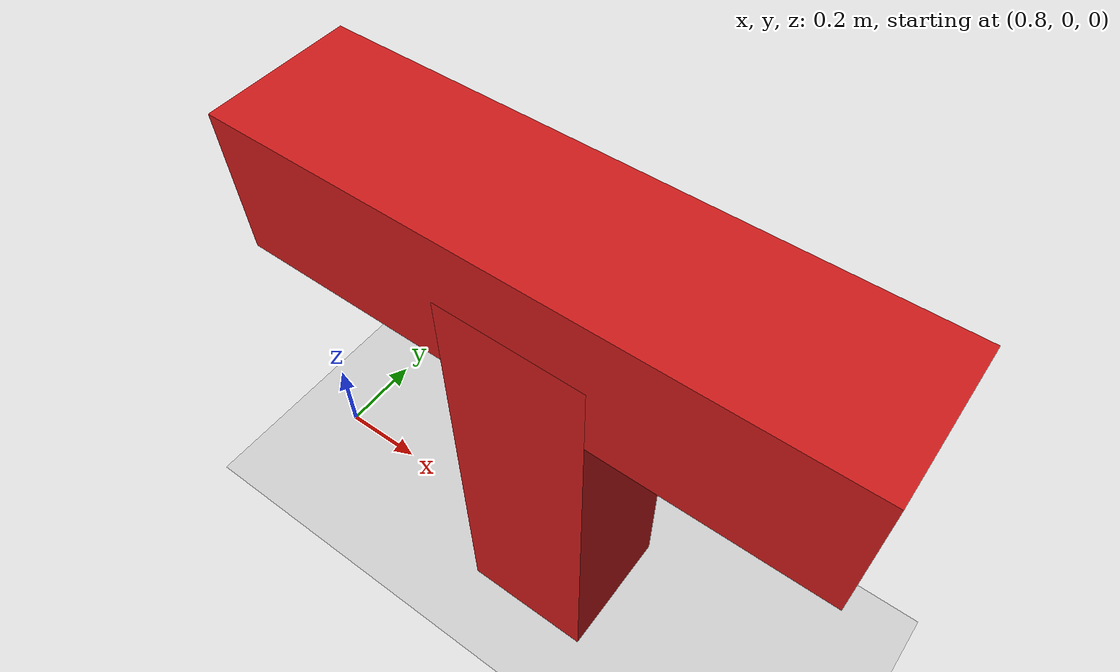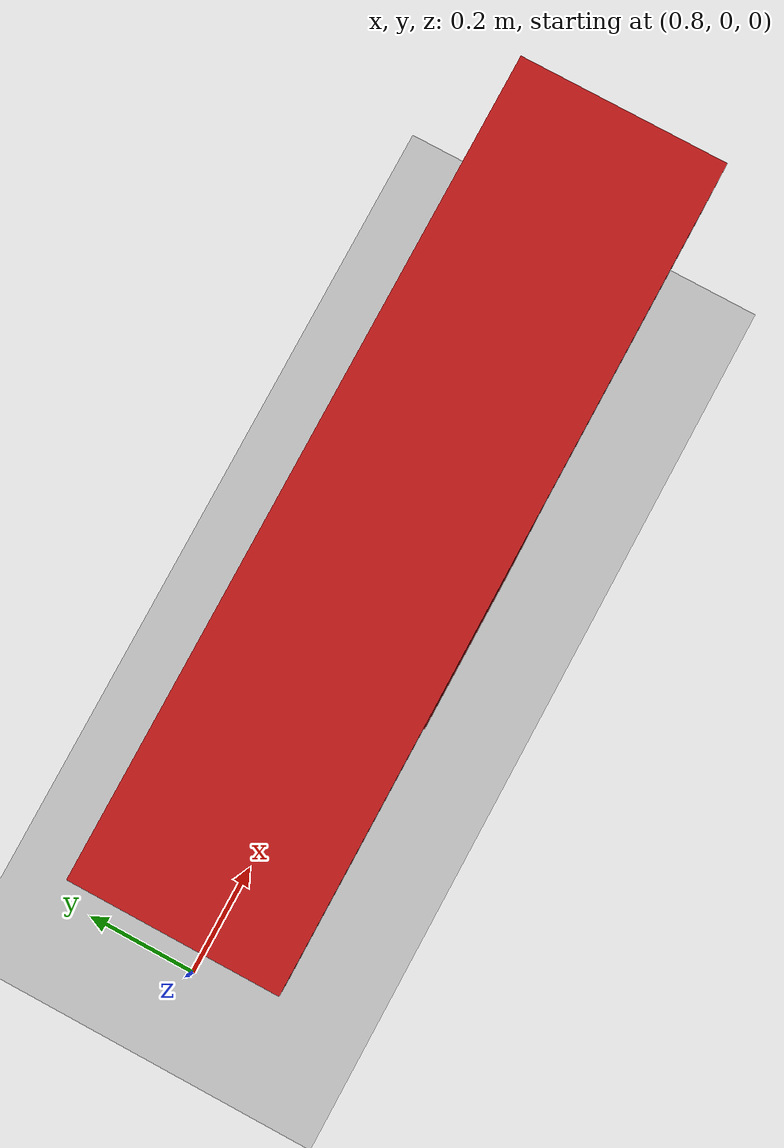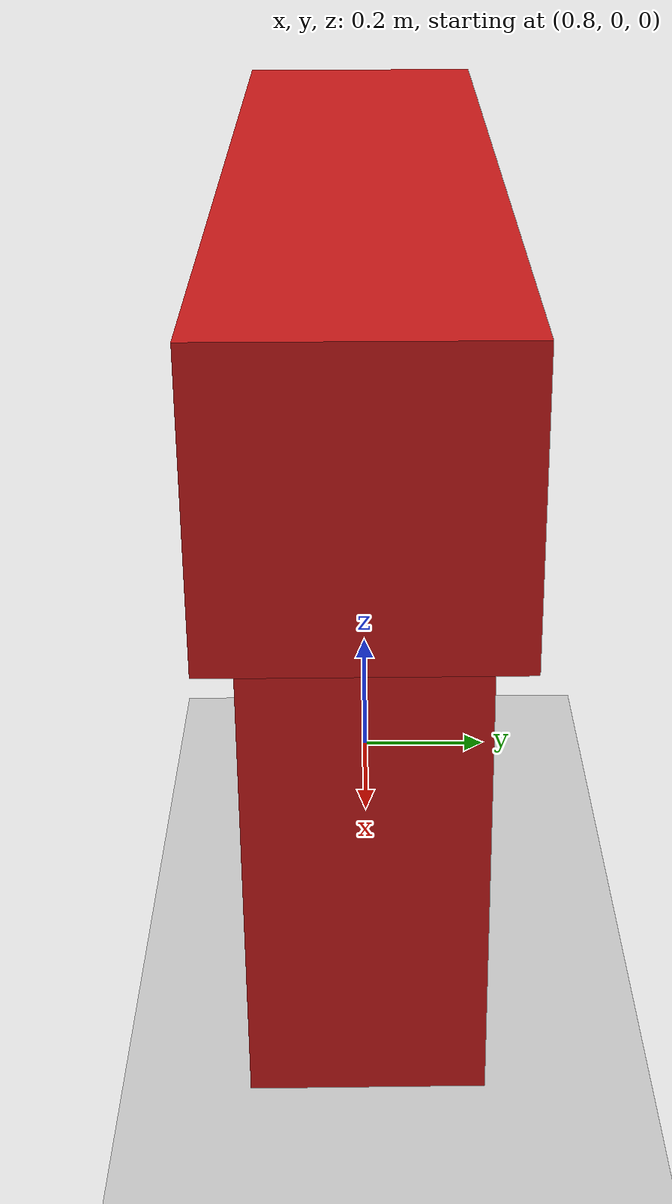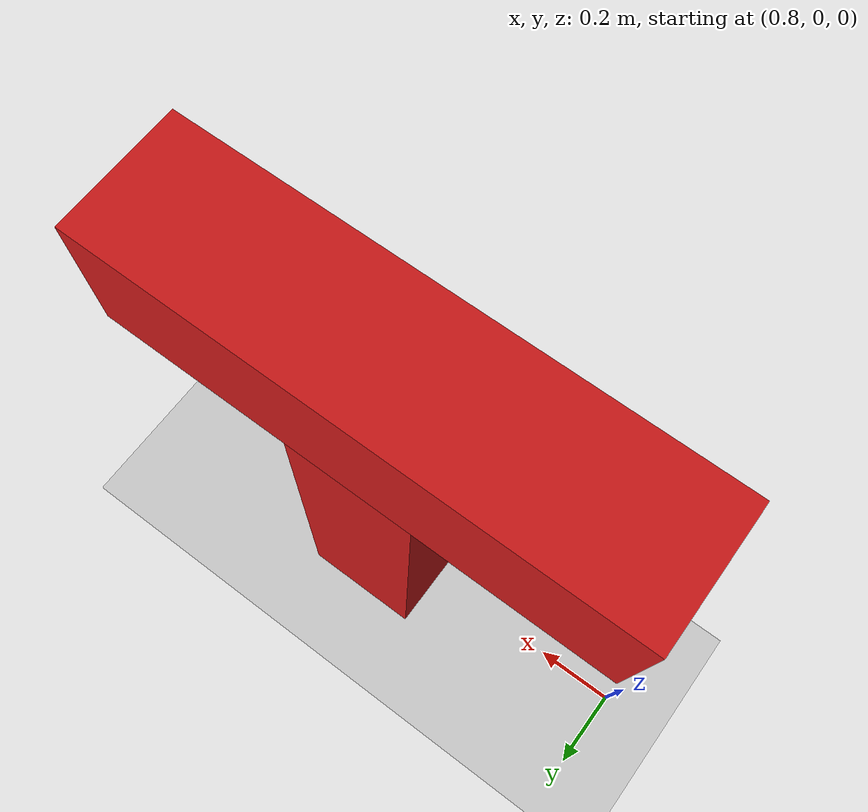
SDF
<?xml version="1.0" ?>
<sdf version="1.6">
  <world name="mid360_obstacle_world">
    <include>
      <uri>model://ground_plane</uri>
    </include>
    <include>
      <uri>model://sun</uri>
    </include>

    <model name="t_obstacle">
      <static>true</static>

      <link name="stem">
        <pose>1.5 0 0.5 0 0 0</pose>
        <collision name="collision">
          <geometry>
            <box><size>0.3 0.3 1.0</size></box>
          </geometry>
        </collision>
        <visual name="visual">
          <geometry>
            <box><size>0.3 0.3 1.0</size></box>
          </geometry>
          <material>
            <ambient>0.8 0.1 0.1 1</ambient>
            <diffuse>0.8 0.1 0.1 1</diffuse>
          </material>
        </visual>
      </link>

      <link name="crossbar">
        <pose>1.5 0 1.0 0 0 0</pose>
        <collision name="collision">
          <geometry>
            <box><size>1.2 0.3 0.3</size></box>
          </geometry>
        </collision>
        <visual name="visual">
          <geometry>
            <box><size>1.2 0.3 0.3</size></box>
          </geometry>
          <material>
            <ambient>0.8 0.1 0.1 1</ambient>
            <diffuse>0.8 0.1 0.1 1</diffuse>
          </material>
        </visual>
      </link>
    </model>
  </world>
</sdf>
